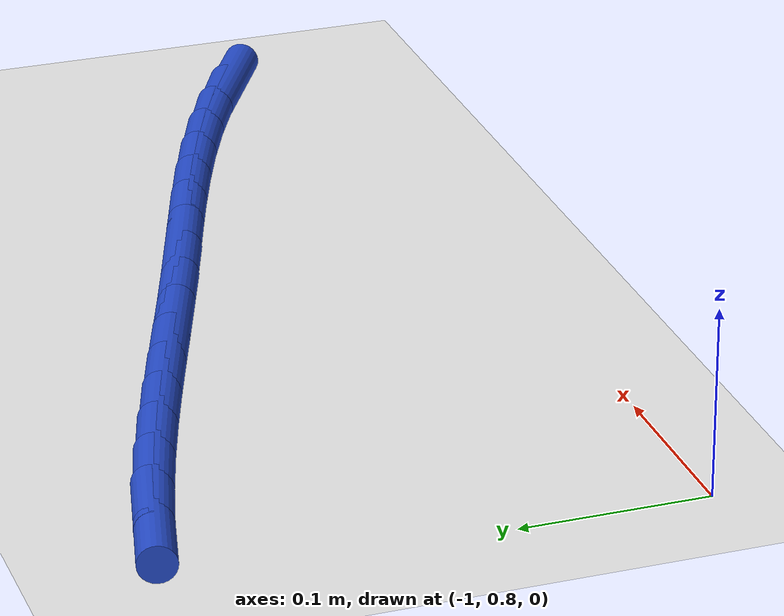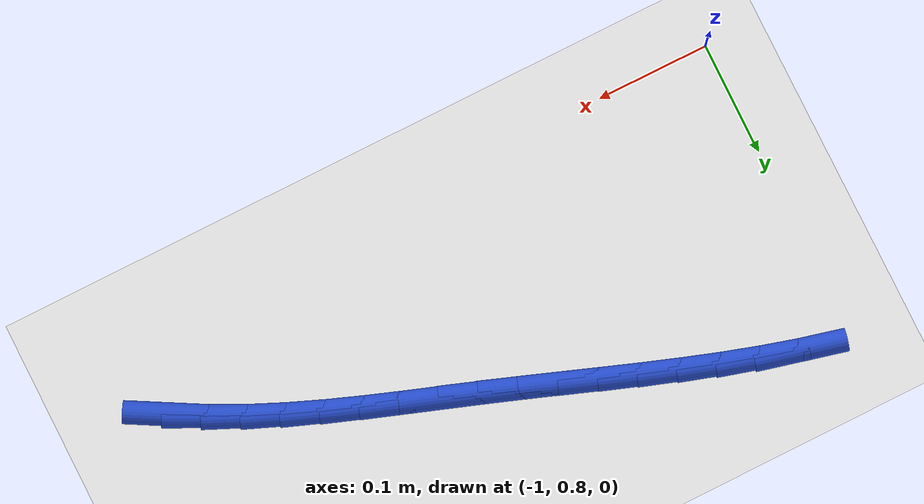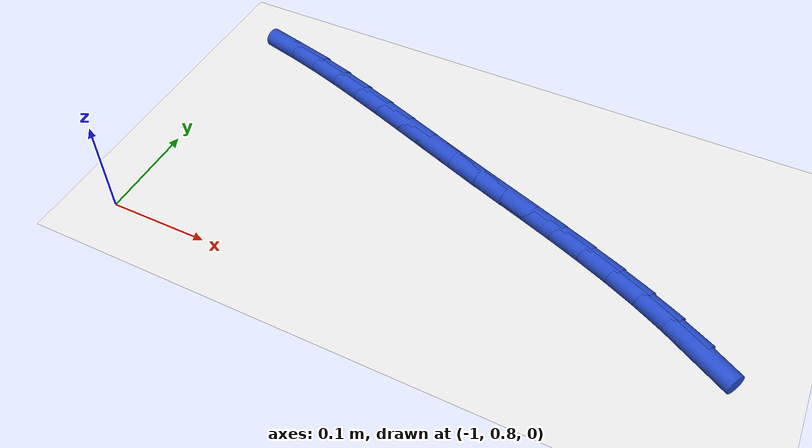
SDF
<sdf version="1.6">
 <world name="default">
  <model name="ground_plane">
   <static>1</static>
   <link name="link">
    <collision name="collision">
     <geometry><plane><normal>0 0 1</normal><size>100 100</size></plane></geometry>
     <surface><friction><ode><mu>100</mu><mu2>50</mu2></ode></friction></surface>
    </collision>
    <visual name="visual">
     <cast_shadows>0</cast_shadows>
     <geometry><plane><normal>0 0 1</normal><size>100 100</size></plane></geometry>
     <material>
      <script><uri>file://media/materials/scripts/gazebo.material</uri><name>Gazebo/WhiteGlow</name></script>
     </material>
    </visual>
   </link>
  </model>
  <model name="line">
   <link name="link_31">
    <pose>-0.458893856802592 0.8774259174753867 0.01 0 1.57 -0.5100819666789304</pose>
    <collision name="collision">
     <geometry><cylinder><radius>0.01</radius><length>0.08</length></cylinder></geometry>
    </collision>
    <visual name="visual">
     <material>
      <script><name>Gazebo/Blue</name><uri>file://media/materials/scripts/gazebo.material</uri></script>
     </material>
     <geometry><cylinder><radius>0.01</radius><length>0.08</length></cylinder></geometry>
    </visual>
   </link>
   <link name="link_32">
    <pose>-0.4873178260382334 0.893328171317812 0.01 0 1.57 -0.4599771303934672</pose>
    <collision name="collision">
     <geometry><cylinder><radius>0.01</radius><length>0.08</length></cylinder></geometry>
    </collision>
    <visual name="visual">
     <material>
      <script><name>Gazebo/Blue</name><uri>file://media/materials/scripts/gazebo.material</uri></script>
     </material>
     <geometry><cylinder><radius>0.01</radius><length>0.08</length></cylinder></geometry>
    </visual>
   </link>
   <link name="link_33">
    <pose>-0.5166210351235947 0.9078455755449256 0.01 0 1.57 -0.41860443215029297</pose>
    <collision name="collision">
     <geometry><cylinder><radius>0.01</radius><length>0.08</length></cylinder></geometry>
    </collision>
    <visual name="visual">
     <material>
      <script><name>Gazebo/Blue</name><uri>file://media/materials/scripts/gazebo.material</uri></script>
     </material>
     <geometry><cylinder><radius>0.01</radius><length>0.08</length></cylinder></geometry>
    </visual>
   </link>
   <link name="link_34">
    <pose>-0.5466637729087572 0.921211580751061 0.01 0 1.57 -0.3858691867354731</pose>
    <collision name="collision">
     <geometry><cylinder><radius>0.01</radius><length>0.08</length></cylinder></geometry>
    </collision>
    <visual name="visual">
     <material>
      <script><name>Gazebo/Blue</name><uri>file://media/materials/scripts/gazebo.material</uri></script>
     </material>
     <geometry><cylinder><radius>0.01</radius><length>0.08</length></cylinder></geometry>
    </visual>
   </link>
   <link name="link_35">
    <pose>-0.5773063282438031 0.9336596375305528 0.01 0 1.57 -0.3615881659650599</pose>
    <collision name="collision">
     <geometry><cylinder><radius>0.01</radius><length>0.08</length></cylinder></geometry>
    </collision>
    <visual name="visual">
     <material>
      <script><name>Gazebo/Blue</name><uri>file://media/materials/scripts/gazebo.material</uri></script>
     </material>
     <geometry><cylinder><radius>0.01</radius><length>0.08</length></cylinder></geometry>
    </visual>
   </link>
   <link name="link_36">
    <pose>-0.608408989978814 0.9454231964777349 0.01 0 1.57 -0.3455615304689277</pose>
    <collision name="collision">
     <geometry><cylinder><radius>0.01</radius><length>0.08</length></cylinder></geometry>
    </collision>
    <visual name="visual">
     <material>
      <script><name>Gazebo/Blue</name><uri>file://media/materials/scripts/gazebo.material</uri></script>
     </material>
     <geometry><cylinder><radius>0.01</radius><length>0.08</length></cylinder></geometry>
    </visual>
   </link>
   <link name="link_37">
    <pose>-0.6398320469638716 0.9567357081869414 0.01 0 1.57 -0.33762180595355923</pose>
    <collision name="collision">
     <geometry><cylinder><radius>0.01</radius><length>0.08</length></cylinder></geometry>
    </collision>
    <visual name="visual">
     <material>
      <script><name>Gazebo/Blue</name><uri>file://media/materials/scripts/gazebo.material</uri></script>
     </material>
     <geometry><cylinder><radius>0.01</radius><length>0.08</length></cylinder></geometry>
    </visual>
   </link>
   <link name="link_38">
    <pose>-0.6714357880490576 0.967830623252506 0.01 0 1.57 -0.3376631574070777</pose>
    <collision name="collision">
     <geometry><cylinder><radius>0.01</radius><length>0.08</length></cylinder></geometry>
    </collision>
    <visual name="visual">
     <material>
      <script><name>Gazebo/Blue</name><uri>file://media/materials/scripts/gazebo.material</uri></script>
     </material>
     <geometry><cylinder><radius>0.01</radius><length>0.08</length></cylinder></geometry>
    </visual>
   </link>
   <link name="link_39">
    <pose>-0.7030805020844538 0.9789413922687629 0.01 0 1.57 -0.34504169216447694</pose>
    <collision name="collision">
     <geometry><cylinder><radius>0.01</radius><length>0.08</length></cylinder></geometry>
    </collision>
    <visual name="visual">
     <material>
      <script><name>Gazebo/Blue</name><uri>file://media/materials/scripts/gazebo.material</uri></script>
     </material>
     <geometry><cylinder><radius>0.01</radius><length>0.08</length></cylinder></geometry>
    </visual>
   </link>
   <link name="link_40">
    <pose>-0.734634821170663 0.9902826336113713 0.01 0 1.57 -0.35214061430597116</pose>
    <collision name="collision">
     <geometry><cylinder><radius>0.01</radius><length>0.08</length></cylinder></geometry>
    </collision>
    <visual name="visual">
     <material>
      <script><name>Gazebo/Blue</name><uri>file://media/materials/scripts/gazebo.material</uri></script>
     </material>
     <geometry><cylinder><radius>0.01</radius><length>0.08</length></cylinder></geometry>
    </visual>
   </link>
   <link name="link_41">
    <pose>-0.7660713875571105 1.0018341960224764 0.01 0 1.57 -0.353774809815372</pose>
    <collision name="collision">
     <geometry><cylinder><radius>0.01</radius><length>0.08</length></cylinder></geometry>
    </collision>
    <visual name="visual">
     <material>
      <script><name>Gazebo/Blue</name><uri>file://media/materials/scripts/gazebo.material</uri></script>
     </material>
     <geometry><cylinder><radius>0.01</radius><length>0.08</length></cylinder></geometry>
    </visual>
   </link>
   <link name="link_42">
    <pose>-0.7974334378866961 1.013416583987232 0.01 0 1.57 -0.34981889681767375</pose>
    <collision name="collision">
     <geometry><cylinder><radius>0.01</radius><length>0.08</length></cylinder></geometry>
    </collision>
    <visual name="visual">
     <material>
      <script><name>Gazebo/Blue</name><uri>file://media/materials/scripts/gazebo.material</uri></script>
     </material>
     <geometry><cylinder><radius>0.01</radius><length>0.08</length></cylinder></geometry>
    </visual>
   </link>
   <link name="link_43">
    <pose>-0.8287655526533967 1.0248472686769419 0.01 0 1.57 -0.3402253253928257</pose>
    <collision name="collision">
     <geometry><cylinder><radius>0.01</radius><length>0.08</length></cylinder></geometry>
    </collision>
    <visual name="visual">
     <material>
      <script><name>Gazebo/Blue</name><uri>file://media/materials/scripts/gazebo.material</uri></script>
     </material>
     <geometry><cylinder><radius>0.01</radius><length>0.08</length></cylinder></geometry>
    </visual>
   </link>
   <link name="link_44">
    <pose>-0.8601123123511887 1.03594372126291 0.01 0 1.57 -0.3249289532018291</pose>
    <collision name="collision">
     <geometry><cylinder><radius>0.01</radius><length>0.08</length></cylinder></geometry>
    </collision>
    <visual name="visual">
     <material>
      <script><name>Gazebo/Blue</name><uri>file://media/materials/scripts/gazebo.material</uri></script>
     </material>
     <geometry><cylinder><radius>0.01</radius><length>0.08</length></cylinder></geometry>
    </visual>
   </link>
   <link name="link_45">
    <pose>-0.8915182974740493 1.0465234129164405 0.01 0 1.57 -0.3038558131596806</pose>
    <collision name="collision">
     <geometry><cylinder><radius>0.01</radius><length>0.08</length></cylinder></geometry>
    </collision>
    <visual name="visual">
     <material>
      <script><name>Gazebo/Blue</name><uri>file://media/materials/scripts/gazebo.material</uri></script>
     </material>
     <geometry><cylinder><radius>0.01</radius><length>0.08</length></cylinder></geometry>
    </visual>
   </link>
   <link name="link_46">
    <pose>-0.9230280885159549 1.0564038148088366 0.01 0 1.57 -0.27693794954460715</pose>
    <collision name="collision">
     <geometry><cylinder><radius>0.01</radius><length>0.08</length></cylinder></geometry>
    </collision>
    <visual name="visual">
     <material>
      <script><name>Gazebo/Blue</name><uri>file://media/materials/scripts/gazebo.material</uri></script>
     </material>
     <geometry><cylinder><radius>0.01</radius><length>0.08</length></cylinder></geometry>
    </visual>
   </link>
   <link name="link_47">
    <pose>-0.9546862659708824 1.065402398111403 0.01 0 1.57 -0.24413484902911714</pose>
    <collision name="collision">
     <geometry><cylinder><radius>0.01</radius><length>0.08</length></cylinder></geometry>
    </collision>
    <visual name="visual">
     <material>
      <script><name>Gazebo/Blue</name><uri>file://media/materials/scripts/gazebo.material</uri></script>
     </material>
     <geometry><cylinder><radius>0.01</radius><length>0.08</length></cylinder></geometry>
    </visual>
   </link>
  </model>
 </world>
</sdf>
